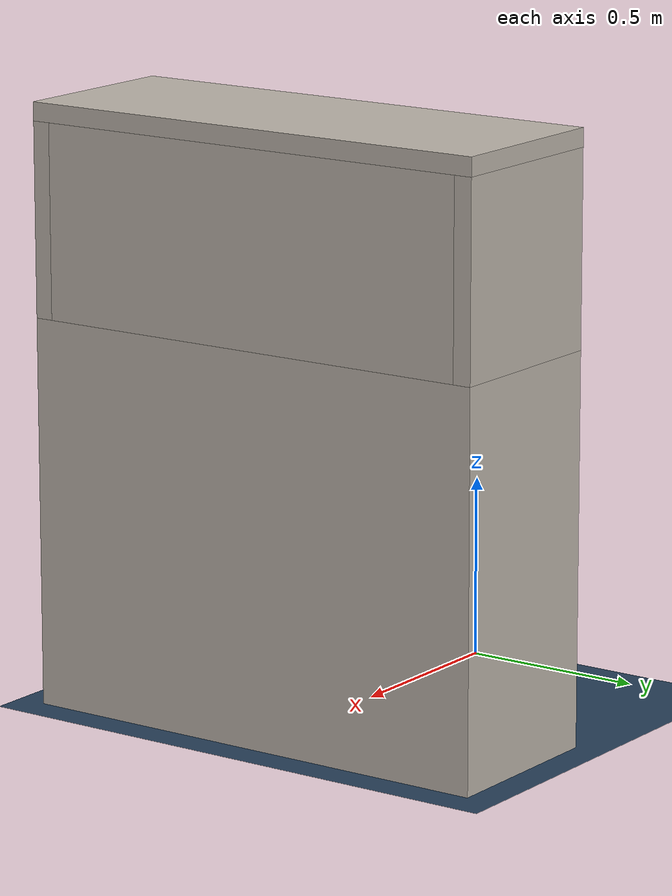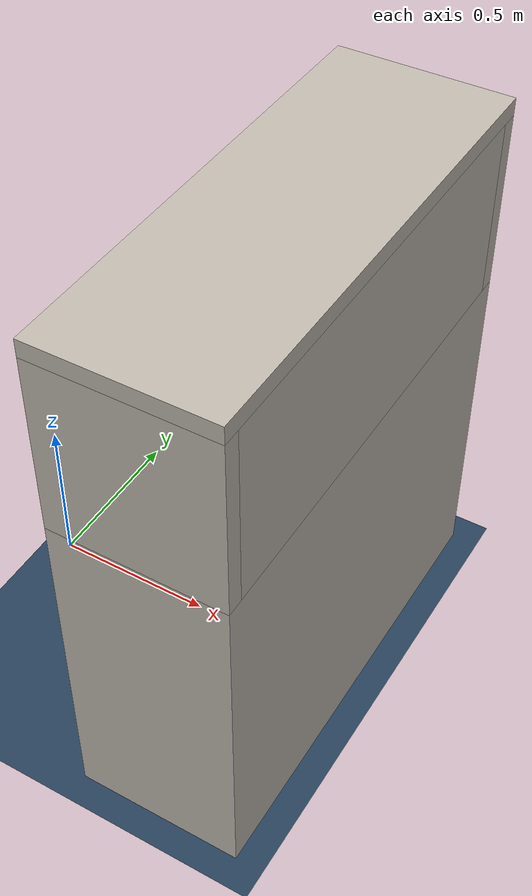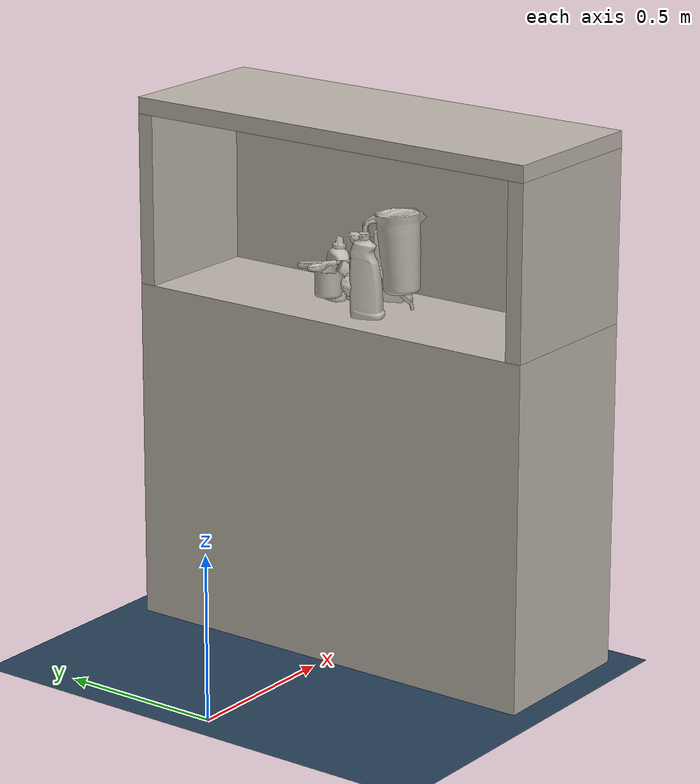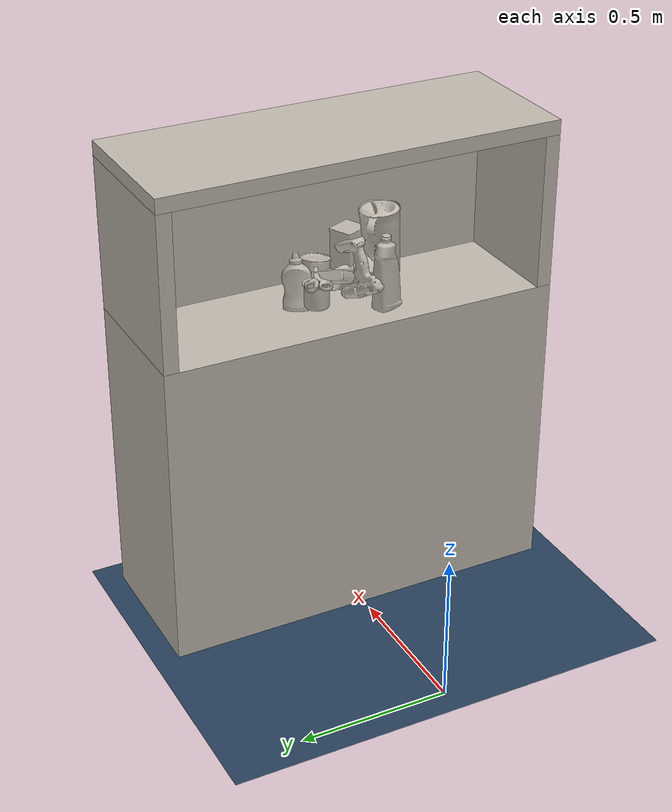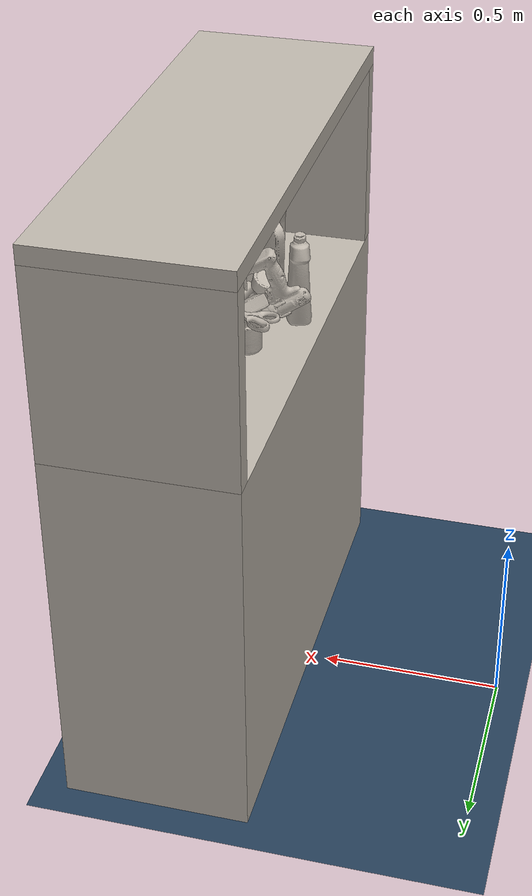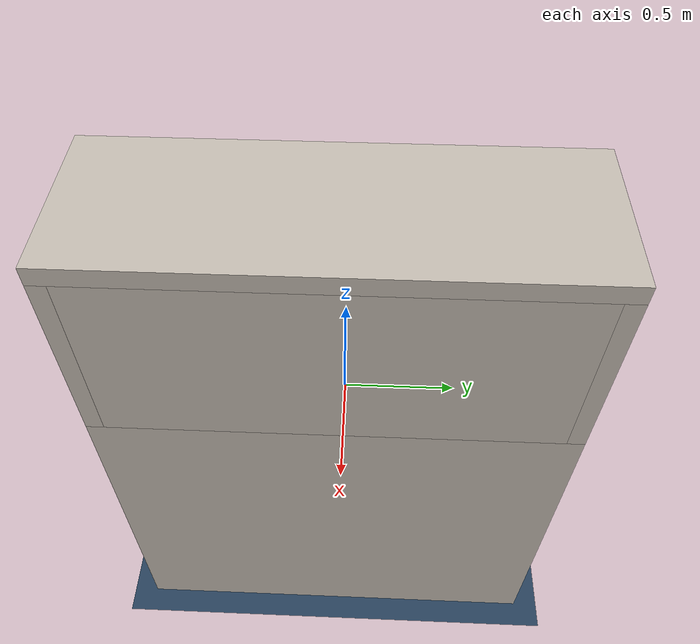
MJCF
<mujoco model="World">

  <compiler angle="radian" balanceinertia="true" inertiafromgeom="true" meshdir="/home/pracsys/GraspClutter6D_local" texturedir="/home/pracsys/GraspClutter6D_local" autolimits="true" />

  <option integrator="Euler" cone="elliptic" solver="CG" noslip_iterations="2">
    <flag warmstart="disable" multiccd="enable" />
  </option>

  <default>
    <geom density="10" />
  </default>

  <asset>

    <texture type="skybox" builtin="flat" rgb1="1 1 1" rgb2="0 0 0" width="512" height="512" />
    <texture name="grid" type="2d" builtin="checker" width="512" height="512" rgb1=".1 .2 .3" rgb2=".2 .3 .4" />
    <material name="grid" texture="grid" texrepeat="2 2" texuniform="true" specular="0" shininess="0" reflectance="0" emission="1" />

    <texture file="models/rs_table/ceramic.png" type="cube" name="tex-ceramic" />
    <material name="table_ceramic" reflectance="0.0" shininess="0.0" specular="0.2" texrepeat="1 1" texture="tex-ceramic" />
  <texture name="obj_000001_0_tex" type="2d" file="models_obj_m/obj_000001/obj_000001.png" /><material name="obj_000001_0_mat" texture="obj_000001_0_tex" specular="1.0" shininess="0.0" /><mesh name="obj_000001_0_vis" file="models_obj_m/obj_000001/obj_000001.obj" /><mesh name="obj_000001_0_obj_000001_collision_0" file="models_obj_m/obj_000001/obj_000001_collision_0.obj" /><mesh name="obj_000001_0_obj_000001_collision_1" file="models_obj_m/obj_000001/obj_000001_collision_1.obj" /><mesh name="obj_000001_0_obj_000001_collision_2" file="models_obj_m/obj_000001/obj_000001_collision_2.obj" /><mesh name="obj_000001_0_obj_000001_collision_3" file="models_obj_m/obj_000001/obj_000001_collision_3.obj" /><texture name="obj_000004_0_tex" type="2d" file="models_obj_m/obj_000004/obj_000004.png" /><material name="obj_000004_0_mat" texture="obj_000004_0_tex" specular="1.0" shininess="0.0" /><mesh name="obj_000004_0_vis" file="models_obj_m/obj_000004/obj_000004.obj" /><mesh name="obj_000004_0_obj_000004_collision_0" file="models_obj_m/obj_000004/obj_000004_collision_0.obj" /><mesh name="obj_000004_0_obj_000004_collision_1" file="models_obj_m/obj_000004/obj_000004_collision_1.obj" /><mesh name="obj_000004_0_obj_000004_collision_2" file="models_obj_m/obj_000004/obj_000004_collision_2.obj" /><mesh name="obj_000004_0_obj_000004_collision_3" file="models_obj_m/obj_000004/obj_000004_collision_3.obj" /><mesh name="obj_000004_0_obj_000004_collision_4" file="models_obj_m/obj_000004/obj_000004_collision_4.obj" /><mesh name="obj_000004_0_obj_000004_collision_5" file="models_obj_m/obj_000004/obj_000004_collision_5.obj" /><mesh name="obj_000004_0_obj_000004_collision_6" file="models_obj_m/obj_000004/obj_000004_collision_6.obj" /><mesh name="obj_000004_0_obj_000004_collision_7" file="models_obj_m/obj_000004/obj_000004_collision_7.obj" /><mesh name="obj_000004_0_obj_000004_collision_8" file="models_obj_m/obj_000004/obj_000004_collision_8.obj" /><mesh name="obj_000004_0_obj_000004_collision_9" file="models_obj_m/obj_000004/obj_000004_collision_9.obj" /><mesh name="obj_000004_0_obj_000004_collision_10" file="models_obj_m/obj_000004/obj_000004_collision_10.obj" /><mesh name="obj_000004_0_obj_000004_collision_11" file="models_obj_m/obj_000004/obj_000004_collision_11.obj" /><mesh name="obj_000004_0_obj_000004_collision_12" file="models_obj_m/obj_000004/obj_000004_collision_12.obj" /><mesh name="obj_000004_0_obj_000004_collision_13" file="models_obj_m/obj_000004/obj_000004_collision_13.obj" /><mesh name="obj_000004_0_obj_000004_collision_14" file="models_obj_m/obj_000004/obj_000004_collision_14.obj" /><mesh name="obj_000004_0_obj_000004_collision_15" file="models_obj_m/obj_000004/obj_000004_collision_15.obj" /><mesh name="obj_000004_0_obj_000004_collision_16" file="models_obj_m/obj_000004/obj_000004_collision_16.obj" /><mesh name="obj_000004_0_obj_000004_collision_17" file="models_obj_m/obj_000004/obj_000004_collision_17.obj" /><mesh name="obj_000004_0_obj_000004_collision_18" file="models_obj_m/obj_000004/obj_000004_collision_18.obj" /><mesh name="obj_000004_0_obj_000004_collision_19" file="models_obj_m/obj_000004/obj_000004_collision_19.obj" /><mesh name="obj_000004_0_obj_000004_collision_20" file="models_obj_m/obj_000004/obj_000004_collision_20.obj" /><mesh name="obj_000004_0_obj_000004_collision_21" file="models_obj_m/obj_000004/obj_000004_collision_21.obj" /><mesh name="obj_000004_0_obj_000004_collision_22" file="models_obj_m/obj_000004/obj_000004_collision_22.obj" /><texture name="obj_000005_0_tex" type="2d" file="models_obj_m/obj_000005/obj_000005.png" /><material name="obj_000005_0_mat" texture="obj_000005_0_tex" specular="1.0" shininess="0.0" /><mesh name="obj_000005_0_vis" file="models_obj_m/obj_000005/obj_000005.obj" /><mesh name="obj_000005_0_obj_000005_collision_0" file="models_obj_m/obj_000005/obj_000005_collision_0.obj" /><mesh name="obj_000005_0_obj_000005_collision_1" file="models_obj_m/obj_000005/obj_000005_collision_1.obj" /><mesh name="obj_000005_0_obj_000005_collision_2" file="models_obj_m/obj_000005/obj_000005_collision_2.obj" /><mesh name="obj_000005_0_obj_000005_collision_3" file="models_obj_m/obj_000005/obj_000005_collision_3.obj" /><texture name="obj_000006_0_tex" type="2d" file="models_obj_m/obj_000006/obj_000006.png" /><material name="obj_000006_0_mat" texture="obj_000006_0_tex" specular="1.0" shininess="0.0" /><mesh name="obj_000006_0_vis" file="models_obj_m/obj_000006/obj_000006.obj" /><mesh name="obj_000006_0_obj_000006_collision_0" file="models_obj_m/obj_000006/obj_000006_collision_0.obj" /><mesh name="obj_000006_0_obj_000006_collision_1" file="models_obj_m/obj_000006/obj_000006_collision_1.obj" /><mesh name="obj_000006_0_obj_000006_collision_2" file="models_obj_m/obj_000006/obj_000006_collision_2.obj" /><mesh name="obj_000006_0_obj_000006_collision_3" file="models_obj_m/obj_000006/obj_000006_collision_3.obj" /><mesh name="obj_000006_0_obj_000006_collision_4" file="models_obj_m/obj_000006/obj_000006_collision_4.obj" /><mesh name="obj_000006_0_obj_000006_collision_5" file="models_obj_m/obj_000006/obj_000006_collision_5.obj" /><mesh name="obj_000006_0_obj_000006_collision_6" file="models_obj_m/obj_000006/obj_000006_collision_6.obj" /><mesh name="obj_000006_0_obj_000006_collision_7" file="models_obj_m/obj_000006/obj_000006_collision_7.obj" /><mesh name="obj_000006_0_obj_000006_collision_8" file="models_obj_m/obj_000006/obj_000006_collision_8.obj" /><mesh name="obj_000006_0_obj_000006_collision_9" file="models_obj_m/obj_000006/obj_000006_collision_9.obj" /><mesh name="obj_000006_0_obj_000006_collision_10" file="models_obj_m/obj_000006/obj_000006_collision_10.obj" /><mesh name="obj_000006_0_obj_000006_collision_11" file="models_obj_m/obj_000006/obj_000006_collision_11.obj" /><mesh name="obj_000006_0_obj_000006_collision_12" file="models_obj_m/obj_000006/obj_000006_collision_12.obj" /><mesh name="obj_000006_0_obj_000006_collision_13" file="models_obj_m/obj_000006/obj_000006_collision_13.obj" /><texture name="obj_000007_0_tex" type="2d" file="models_obj_m/obj_000007/obj_000007.png" /><material name="obj_000007_0_mat" texture="obj_000007_0_tex" specular="1.0" shininess="0.0" /><mesh name="obj_000007_0_vis" file="models_obj_m/obj_000007/obj_000007.obj" /><mesh name="obj_000007_0_obj_000007_collision_0" file="models_obj_m/obj_000007/obj_000007_collision_0.obj" /><mesh name="obj_000007_0_obj_000007_collision_1" file="models_obj_m/obj_000007/obj_000007_collision_1.obj" /><mesh name="obj_000007_0_obj_000007_collision_2" file="models_obj_m/obj_000007/obj_000007_collision_2.obj" /><mesh name="obj_000007_0_obj_000007_collision_3" file="models_obj_m/obj_000007/obj_000007_collision_3.obj" /><mesh name="obj_000007_0_obj_000007_collision_4" file="models_obj_m/obj_000007/obj_000007_collision_4.obj" /><mesh name="obj_000007_0_obj_000007_collision_5" file="models_obj_m/obj_000007/obj_000007_collision_5.obj" /><mesh name="obj_000007_0_obj_000007_collision_6" file="models_obj_m/obj_000007/obj_000007_collision_6.obj" /><mesh name="obj_000007_0_obj_000007_collision_7" file="models_obj_m/obj_000007/obj_000007_collision_7.obj" /><mesh name="obj_000007_0_obj_000007_collision_8" file="models_obj_m/obj_000007/obj_000007_collision_8.obj" /><texture name="obj_000008_0_tex" type="2d" file="models_obj_m/obj_000008/obj_000008.png" /><material name="obj_000008_0_mat" texture="obj_000008_0_tex" specular="1.0" shininess="0.0" /><mesh name="obj_000008_0_vis" file="models_obj_m/obj_000008/obj_000008.obj" /><mesh name="obj_000008_0_obj_000008_collision_0" file="models_obj_m/obj_000008/obj_000008_collision_0.obj" /><mesh name="obj_000008_0_obj_000008_collision_1" file="models_obj_m/obj_000008/obj_000008_collision_1.obj" /><texture name="obj_000010_0_tex" type="2d" file="models_obj_m/obj_000010/obj_000011.png" /><material name="obj_000010_0_mat" texture="obj_000010_0_tex" specular="1.0" shininess="0.0" /><mesh name="obj_000010_0_vis" file="models_obj_m/obj_000010/obj_000010.obj" /><mesh name="obj_000010_0_obj_000010_collision_0" file="models_obj_m/obj_000010/obj_000010_collision_0.obj" /><mesh name="obj_000010_0_obj_000010_collision_1" file="models_obj_m/obj_000010/obj_000010_collision_1.obj" /><texture name="obj_000011_0_tex" type="2d" file="models_obj_m/obj_000011/obj_000011.png" /><material name="obj_000011_0_mat" texture="obj_000011_0_tex" specular="1.0" shininess="0.0" /><mesh name="obj_000011_0_vis" file="models_obj_m/obj_000011/obj_000011.obj" /><mesh name="obj_000011_0_obj_000011_collision_0" file="models_obj_m/obj_000011/obj_000011_collision_0.obj" /><mesh name="obj_000011_0_obj_000011_collision_1" file="models_obj_m/obj_000011/obj_000011_collision_1.obj" /><texture name="obj_000012_0_tex" type="2d" file="models_obj_m/obj_000012/obj_000013.png" /><material name="obj_000012_0_mat" texture="obj_000012_0_tex" specular="1.0" shininess="0.0" /><mesh name="obj_000012_0_vis" file="models_obj_m/obj_000012/obj_000012.obj" /><mesh name="obj_000012_0_obj_000012_collision_0" file="models_obj_m/obj_000012/obj_000012_collision_0.obj" /><mesh name="obj_000012_0_obj_000012_collision_1" file="models_obj_m/obj_000012/obj_000012_collision_1.obj" /><mesh name="obj_000012_0_obj_000012_collision_2" file="models_obj_m/obj_000012/obj_000012_collision_2.obj" /><texture name="obj_000014_0_tex" type="2d" file="models_obj_m/obj_000014/obj_000014.png" /><material name="obj_000014_0_mat" texture="obj_000014_0_tex" specular="1.0" shininess="0.0" /><mesh name="obj_000014_0_vis" file="models_obj_m/obj_000014/obj_000014.obj" /><mesh name="obj_000014_0_obj_000014_collision_0" file="models_obj_m/obj_000014/obj_000014_collision_0.obj" /><mesh name="obj_000014_0_obj_000014_collision_1" file="models_obj_m/obj_000014/obj_000014_collision_1.obj" /><mesh name="obj_000014_0_obj_000014_collision_2" file="models_obj_m/obj_000014/obj_000014_collision_2.obj" /><mesh name="obj_000014_0_obj_000014_collision_3" file="models_obj_m/obj_000014/obj_000014_collision_3.obj" /><mesh name="obj_000014_0_obj_000014_collision_4" file="models_obj_m/obj_000014/obj_000014_collision_4.obj" /><mesh name="obj_000014_0_obj_000014_collision_5" file="models_obj_m/obj_000014/obj_000014_collision_5.obj" /><mesh name="obj_000014_0_obj_000014_collision_6" file="models_obj_m/obj_000014/obj_000014_collision_6.obj" /><mesh name="obj_000014_0_obj_000014_collision_7" file="models_obj_m/obj_000014/obj_000014_collision_7.obj" /><mesh name="obj_000014_0_obj_000014_collision_8" file="models_obj_m/obj_000014/obj_000014_collision_8.obj" /><mesh name="obj_000014_0_obj_000014_collision_9" file="models_obj_m/obj_000014/obj_000014_collision_9.obj" /><mesh name="obj_000014_0_obj_000014_collision_10" file="models_obj_m/obj_000014/obj_000014_collision_10.obj" /><mesh name="obj_000014_0_obj_000014_collision_11" file="models_obj_m/obj_000014/obj_000014_collision_11.obj" /><mesh name="obj_000014_0_obj_000014_collision_12" file="models_obj_m/obj_000014/obj_000014_collision_12.obj" /><mesh name="obj_000014_0_obj_000014_collision_13" file="models_obj_m/obj_000014/obj_000014_collision_13.obj" /><mesh name="obj_000014_0_obj_000014_collision_14" file="models_obj_m/obj_000014/obj_000014_collision_14.obj" /><mesh name="obj_000014_0_obj_000014_collision_15" file="models_obj_m/obj_000014/obj_000014_collision_15.obj" /><mesh name="obj_000014_0_obj_000014_collision_16" file="models_obj_m/obj_000014/obj_000014_collision_16.obj" /><mesh name="obj_000014_0_obj_000014_collision_17" file="models_obj_m/obj_000014/obj_000014_collision_17.obj" /><mesh name="obj_000014_0_obj_000014_collision_18" file="models_obj_m/obj_000014/obj_000014_collision_18.obj" /><mesh name="obj_000014_0_obj_000014_collision_19" file="models_obj_m/obj_000014/obj_000014_collision_19.obj" /><mesh name="obj_000014_0_obj_000014_collision_20" file="models_obj_m/obj_000014/obj_000014_collision_20.obj" /><mesh name="obj_000014_0_obj_000014_collision_21" file="models_obj_m/obj_000014/obj_000014_collision_21.obj" /><mesh name="obj_000014_0_obj_000014_collision_22" file="models_obj_m/obj_000014/obj_000014_collision_22.obj" /><mesh name="obj_000014_0_obj_000014_collision_23" file="models_obj_m/obj_000014/obj_000014_collision_23.obj" /><mesh name="obj_000014_0_obj_000014_collision_24" file="models_obj_m/obj_000014/obj_000014_collision_24.obj" /><mesh name="obj_000014_0_obj_000014_collision_25" file="models_obj_m/obj_000014/obj_000014_collision_25.obj" /><mesh name="obj_000014_0_obj_000014_collision_26" file="models_obj_m/obj_000014/obj_000014_collision_26.obj" /><mesh name="obj_000014_0_obj_000014_collision_27" file="models_obj_m/obj_000014/obj_000014_collision_27.obj" /><mesh name="obj_000014_0_obj_000014_collision_28" file="models_obj_m/obj_000014/obj_000014_collision_28.obj" /><mesh name="obj_000014_0_obj_000014_collision_29" file="models_obj_m/obj_000014/obj_000014_collision_29.obj" /><mesh name="obj_000014_0_obj_000014_collision_30" file="models_obj_m/obj_000014/obj_000014_collision_30.obj" /><mesh name="obj_000014_0_obj_000014_collision_31" file="models_obj_m/obj_000014/obj_000014_collision_31.obj" /><mesh name="obj_000014_0_obj_000014_collision_32" file="models_obj_m/obj_000014/obj_000014_collision_32.obj" /><mesh name="obj_000014_0_obj_000014_collision_33" file="models_obj_m/obj_000014/obj_000014_collision_33.obj" /><mesh name="obj_000014_0_obj_000014_collision_34" file="models_obj_m/obj_000014/obj_000014_collision_34.obj" /><mesh name="obj_000014_0_obj_000014_collision_35" file="models_obj_m/obj_000014/obj_000014_collision_35.obj" /><mesh name="obj_000014_0_obj_000014_collision_36" file="models_obj_m/obj_000014/obj_000014_collision_36.obj" /><mesh name="obj_000014_0_obj_000014_collision_37" file="models_obj_m/obj_000014/obj_000014_collision_37.obj" /><mesh name="obj_000014_0_obj_000014_collision_38" file="models_obj_m/obj_000014/obj_000014_collision_38.obj" /><texture name="obj_000015_0_tex" type="2d" file="models_obj_m/obj_000015/obj_000015.png" /><material name="obj_000015_0_mat" texture="obj_000015_0_tex" specular="1.0" shininess="0.0" /><mesh name="obj_000015_0_vis" file="models_obj_m/obj_000015/obj_000015.obj" /><mesh name="obj_000015_0_obj_000015_collision_0" file="models_obj_m/obj_000015/obj_000015_collision_0.obj" /><mesh name="obj_000015_0_obj_000015_collision_1" file="models_obj_m/obj_000015/obj_000015_collision_1.obj" /><texture name="obj_000016_0_tex" type="2d" file="models_obj_m/obj_000016/obj_000016.png" /><material name="obj_000016_0_mat" texture="obj_000016_0_tex" specular="1.0" shininess="0.0" /><mesh name="obj_000016_0_vis" file="models_obj_m/obj_000016/obj_000016.obj" /><mesh name="obj_000016_0_obj_000016_collision_0" file="models_obj_m/obj_000016/obj_000016_collision_0.obj" /><mesh name="obj_000016_0_obj_000016_collision_1" file="models_obj_m/obj_000016/obj_000016_collision_1.obj" /><texture name="obj_000017_0_tex" type="2d" file="models_obj_m/obj_000017/obj_000018.png" /><material name="obj_000017_0_mat" texture="obj_000017_0_tex" specular="1.0" shininess="0.0" /><mesh name="obj_000017_0_vis" file="models_obj_m/obj_000017/obj_000017.obj" /><mesh name="obj_000017_0_obj_000017_collision_0" file="models_obj_m/obj_000017/obj_000017_collision_0.obj" /><mesh name="obj_000017_0_obj_000017_collision_1" file="models_obj_m/obj_000017/obj_000017_collision_1.obj" /><mesh name="obj_000017_0_obj_000017_collision_2" file="models_obj_m/obj_000017/obj_000017_collision_2.obj" /><mesh name="obj_000017_0_obj_000017_collision_3" file="models_obj_m/obj_000017/obj_000017_collision_3.obj" /><mesh name="obj_000017_0_obj_000017_collision_4" file="models_obj_m/obj_000017/obj_000017_collision_4.obj" /><mesh name="obj_000017_0_obj_000017_collision_5" file="models_obj_m/obj_000017/obj_000017_collision_5.obj" /><mesh name="obj_000017_0_obj_000017_collision_6" file="models_obj_m/obj_000017/obj_000017_collision_6.obj" /><mesh name="obj_000017_0_obj_000017_collision_7" file="models_obj_m/obj_000017/obj_000017_collision_7.obj" /><mesh name="obj_000017_0_obj_000017_collision_8" file="models_obj_m/obj_000017/obj_000017_collision_8.obj" /><mesh name="obj_000017_0_obj_000017_collision_9" file="models_obj_m/obj_000017/obj_000017_collision_9.obj" /><mesh name="obj_000017_0_obj_000017_collision_10" file="models_obj_m/obj_000017/obj_000017_collision_10.obj" /><mesh name="obj_000017_0_obj_000017_collision_11" file="models_obj_m/obj_000017/obj_000017_collision_11.obj" /><mesh name="obj_000017_0_obj_000017_collision_12" file="models_obj_m/obj_000017/obj_000017_collision_12.obj" /><mesh name="obj_000017_0_obj_000017_collision_13" file="models_obj_m/obj_000017/obj_000017_collision_13.obj" /><mesh name="obj_000017_0_obj_000017_collision_14" file="models_obj_m/obj_000017/obj_000017_collision_14.obj" /><mesh name="obj_000017_0_obj_000017_collision_15" file="models_obj_m/obj_000017/obj_000017_collision_15.obj" /><mesh name="obj_000017_0_obj_000017_collision_16" file="models_obj_m/obj_000017/obj_000017_collision_16.obj" /><mesh name="obj_000017_0_obj_000017_collision_17" file="models_obj_m/obj_000017/obj_000017_collision_17.obj" /><mesh name="obj_000017_0_obj_000017_collision_18" file="models_obj_m/obj_000017/obj_000017_collision_18.obj" /><mesh name="obj_000017_0_obj_000017_collision_19" file="models_obj_m/obj_000017/obj_000017_collision_19.obj" /><mesh name="obj_000017_0_obj_000017_collision_20" file="models_obj_m/obj_000017/obj_000017_collision_20.obj" /><mesh name="obj_000017_0_obj_000017_collision_21" file="models_obj_m/obj_000017/obj_000017_collision_21.obj" /><mesh name="obj_000017_0_obj_000017_collision_22" file="models_obj_m/obj_000017/obj_000017_collision_22.obj" /><mesh name="obj_000017_0_obj_000017_collision_23" file="models_obj_m/obj_000017/obj_000017_collision_23.obj" /><mesh name="obj_000017_0_obj_000017_collision_24" file="models_obj_m/obj_000017/obj_000017_collision_24.obj" /><mesh name="obj_000017_0_obj_000017_collision_25" file="models_obj_m/obj_000017/obj_000017_collision_25.obj" /><mesh name="obj_000017_0_obj_000017_collision_26" file="models_obj_m/obj_000017/obj_000017_collision_26.obj" /><mesh name="obj_000017_0_obj_000017_collision_27" file="models_obj_m/obj_000017/obj_000017_collision_27.obj" /></asset>

  <worldbody>
    <geom name="floor" size="2 2 0.05" type="plane" material="grid" condim="3" />
    <light directional="true" pos="-0.5 0.5 3" dir="0 0 -1" castshadow="false" diffuse="1 1 1" />
    <body name="workspace" pos="0.8 0 0">
      <geom name="shelf_bottom" size="0.25 0.68 0.525" pos="0 0 0.525" type="box" material="table_ceramic" />
      <geom name="shelf_top" size="0.25 0.68 0.025" pos="0 0 1.595" type="box" material="table_ceramic" />
      <geom name="shelf_padding_left" size="0.25 0.025 0.26" pos="0 -0.655 1.31" type="box" material="table_ceramic" />
      <geom name="shelf_padding_right" size="0.25 0.025 0.26" pos="0 0.655 1.31" type="box" material="table_ceramic" />
      <geom name="shelf_padding_back" size="0.05 0.63 0.26" pos="0.2 0 1.31" type="box" material="table_ceramic" />
    </body>
  <body name="obj_000001_0" pos="0.8200727456752468 0.04587298067996269 1.1159029911158158" quat="0.006132674227127622 0.6303514541096195 -0.7721102827390213 -0.08040613096885223"><joint name="obj_000001_0_joint" type="free" limited="false" actuatorfrclimited="false" /><geom name="obj_000001_0_geom" type="mesh" contype="0" conaffinity="0" group="1" mesh="obj_000001_0_vis" material="obj_000001_0_mat" /><geom type="mesh" contype="3" conaffinity="3" group="3" rgba="0.9088700260871841 0.5571276366315294 0.02905709149002622 1" mesh="obj_000001_0_obj_000001_collision_0" /><geom type="mesh" contype="3" conaffinity="3" group="3" rgba="0.6410593324381463 0.8402607000713928 0.7776918396385317 1" mesh="obj_000001_0_obj_000001_collision_1" /><geom type="mesh" contype="3" conaffinity="3" group="3" rgba="0.7741652165627951 0.3179101861807435 0.21643336209038533 1" mesh="obj_000001_0_obj_000001_collision_2" /><geom type="mesh" contype="3" conaffinity="3" group="3" rgba="0.8899250795032356 0.5115007140285017 0.5329157655053317 1" mesh="obj_000001_0_obj_000001_collision_3" /></body><body name="obj_000004_0" pos="0.7772426235087818 0.024683652515866628 1.1286223254050312" quat="0.5455081721445226 -0.4138782459699102 -0.4405025155138106 0.5805886370421125"><joint name="obj_000004_0_joint" type="free" limited="false" actuatorfrclimited="false" /><geom name="obj_000004_0_geom" type="mesh" contype="0" conaffinity="0" group="1" mesh="obj_000004_0_vis" material="obj_000004_0_mat" /><geom type="mesh" contype="3" conaffinity="3" group="3" rgba="0.9006364109388675 0.519839966144869 0.14706711888770962 1" mesh="obj_000004_0_obj_000004_collision_0" /><geom type="mesh" contype="3" conaffinity="3" group="3" rgba="0.5381862094377646 0.9079565306792778 0.5860391296454226 1" mesh="obj_000004_0_obj_000004_collision_1" /><geom type="mesh" contype="3" conaffinity="3" group="3" rgba="0.5480980169898275 0.08959733837327 0.9583058214694634 1" mesh="obj_000004_0_obj_000004_collision_2" /><geom type="mesh" contype="3" conaffinity="3" group="3" rgba="0.7348365413245799 0.9954340839881138 0.10043620261647124 1" mesh="obj_000004_0_obj_000004_collision_3" /><geom type="mesh" contype="3" conaffinity="3" group="3" rgba="0.15354151346682998 0.3992493537144245 0.9018485612644948 1" mesh="obj_000004_0_obj_000004_collision_4" /><geom type="mesh" contype="3" conaffinity="3" group="3" rgba="0.5002296823323479 0.06984196192688352 0.14791196849948396 1" mesh="obj_000004_0_obj_000004_collision_5" /><geom type="mesh" contype="3" conaffinity="3" group="3" rgba="0.8801698595600871 0.26981609947861984 0.5413749209604201 1" mesh="obj_000004_0_obj_000004_collision_6" /><geom type="mesh" contype="3" conaffinity="3" group="3" rgba="0.7455497002678284 0.842184542639177 0.5322202076862146 1" mesh="obj_000004_0_obj_000004_collision_7" /><geom type="mesh" contype="3" conaffinity="3" group="3" rgba="0.4442591382610347 0.03638499919506211 0.32497635780499234 1" mesh="obj_000004_0_obj_000004_collision_8" /><geom type="mesh" contype="3" conaffinity="3" group="3" rgba="0.347627915730894 0.06862688241171433 0.2798410387094733 1" mesh="obj_000004_0_obj_000004_collision_9" /><geom type="mesh" contype="3" conaffinity="3" group="3" rgba="0.37436058860529653 0.8129023073913533 0.26614439644261234 1" mesh="obj_000004_0_obj_000004_collision_10" /><geom type="mesh" contype="3" conaffinity="3" group="3" rgba="0.6651690258226822 0.3522546747219869 0.10346100033130279 1" mesh="obj_000004_0_obj_000004_collision_11" /><geom type="mesh" contype="3" conaffinity="3" group="3" rgba="0.37709868933847024 0.90775268626264 0.22612048573823684 1" mesh="obj_000004_0_obj_000004_collision_12" /><geom type="mesh" contype="3" conaffinity="3" group="3" rgba="0.40627473735328157 0.5372136836683266 0.09197578627779501 1" mesh="obj_000004_0_obj_000004_collision_13" /><geom type="mesh" contype="3" conaffinity="3" group="3" rgba="0.5166762315831523 0.5043939028531624 0.5872248864695762 1" mesh="obj_000004_0_obj_000004_collision_14" /><geom type="mesh" contype="3" conaffinity="3" group="3" rgba="0.9082988442703623 0.180499146533042 0.06796330417599283 1" mesh="obj_000004_0_obj_000004_collision_15" /><geom type="mesh" contype="3" conaffinity="3" group="3" rgba="0.3943402105248509 0.6197627239371787 0.4344456177319421 1" mesh="obj_000004_0_obj_000004_collision_16" /><geom type="mesh" contype="3" conaffinity="3" group="3" rgba="0.7831743542292524 0.42593724102287467 0.6857518540249657 1" mesh="obj_000004_0_obj_000004_collision_17" /><geom type="mesh" contype="3" conaffinity="3" group="3" rgba="0.16096816650240264 0.6010361248517645 0.059463136740677824 1" mesh="obj_000004_0_obj_000004_collision_18" /><geom type="mesh" contype="3" conaffinity="3" group="3" rgba="0.44263326221518995 0.2502881781833013 0.38014160116271456 1" mesh="obj_000004_0_obj_000004_collision_19" /><geom type="mesh" contype="3" conaffinity="3" group="3" rgba="0.5463028526085283 0.845330838869169 0.028012824828687388 1" mesh="obj_000004_0_obj_000004_collision_20" /><geom type="mesh" contype="3" conaffinity="3" group="3" rgba="0.19910255883632533 0.853207251405083 0.4267815842990055 1" mesh="obj_000004_0_obj_000004_collision_21" /><geom type="mesh" contype="3" conaffinity="3" group="3" rgba="0.013081679159259063 0.8478266493247634 0.5767717804295942 1" mesh="obj_000004_0_obj_000004_collision_22" /></body><body name="obj_000005_0" pos="0.7841225165709209 0.12540085650879013 1.136019917975469" quat="0.7314607595256353 0.05568694079950609 0.04163167382319477 0.6783295111030119"><joint name="obj_000005_0_joint" type="free" limited="false" actuatorfrclimited="false" /><geom name="obj_000005_0_geom" type="mesh" contype="0" conaffinity="0" group="1" mesh="obj_000005_0_vis" material="obj_000005_0_mat" /><geom type="mesh" contype="3" conaffinity="3" group="3" rgba="0.7022177830689367 0.5826341853352067 0.8165841864018348 1" mesh="obj_000005_0_obj_000005_collision_0" /><geom type="mesh" contype="3" conaffinity="3" group="3" rgba="0.8850110305129232 0.6858243586259702 0.23668113982222616 1" mesh="obj_000005_0_obj_000005_collision_1" /><geom type="mesh" contype="3" conaffinity="3" group="3" rgba="0.3521162735319521 0.8507480837221914 0.47569448758993216 1" mesh="obj_000005_0_obj_000005_collision_2" /><geom type="mesh" contype="3" conaffinity="3" group="3" rgba="0.9128805975392907 0.1623848974121762 0.6573614293432378 1" mesh="obj_000005_0_obj_000005_collision_3" /></body><body name="obj_000006_0" pos="0.6893925091994834 -0.07492159066116513 1.184225548508346" quat="0.1604136067751871 0.8579675139751776 0.48324009847019467 0.06810452962282149"><joint name="obj_000006_0_joint" type="free" limited="false" actuatorfrclimited="false" /><geom name="obj_000006_0_geom" type="mesh" contype="0" conaffinity="0" group="1" mesh="obj_000006_0_vis" material="obj_000006_0_mat" /><geom type="mesh" contype="3" conaffinity="3" group="3" rgba="0.2826735963389645 0.3732613789385052 0.7850961502526286 1" mesh="obj_000006_0_obj_000006_collision_0" /><geom type="mesh" contype="3" conaffinity="3" group="3" rgba="0.2778119464286495 0.852700815001951 0.9131251478975895 1" mesh="obj_000006_0_obj_000006_collision_1" /><geom type="mesh" contype="3" conaffinity="3" group="3" rgba="0.8020587813288036 0.3025792521954269 0.26202108232011456 1" mesh="obj_000006_0_obj_000006_collision_2" /><geom type="mesh" contype="3" conaffinity="3" group="3" rgba="0.8749284451958235 0.7193776905239141 0.13458988549502138 1" mesh="obj_000006_0_obj_000006_collision_3" /><geom type="mesh" contype="3" conaffinity="3" group="3" rgba="0.2130188599738736 0.6558868892940936 0.9509039115354172 1" mesh="obj_000006_0_obj_000006_collision_4" /><geom type="mesh" contype="3" conaffinity="3" group="3" rgba="0.7150440817211193 0.6337582813459244 0.5959789356841197 1" mesh="obj_000006_0_obj_000006_collision_5" /><geom type="mesh" contype="3" conaffinity="3" group="3" rgba="0.5914430060148156 0.6397733981720453 0.4770481905761884 1" mesh="obj_000006_0_obj_000006_collision_6" /><geom type="mesh" contype="3" conaffinity="3" group="3" rgba="0.5370695134833949 0.5650036394015392 0.4193565416983073 1" mesh="obj_000006_0_obj_000006_collision_7" /><geom type="mesh" contype="3" conaffinity="3" group="3" rgba="0.45822516380627654 0.5322962868917284 0.22216684784693663 1" mesh="obj_000006_0_obj_000006_collision_8" /><geom type="mesh" contype="3" conaffinity="3" group="3" rgba="0.006992755819853924 0.22617836990136309 0.6404316243166618 1" mesh="obj_000006_0_obj_000006_collision_9" /><geom type="mesh" contype="3" conaffinity="3" group="3" rgba="0.11371882398649225 0.6403057750389807 0.6565213489306491 1" mesh="obj_000006_0_obj_000006_collision_10" /><geom type="mesh" contype="3" conaffinity="3" group="3" rgba="0.5479453169554588 0.8715696065342489 0.8827485230284868 1" mesh="obj_000006_0_obj_000006_collision_11" /><geom type="mesh" contype="3" conaffinity="3" group="3" rgba="0.29639456023491106 0.716942263751537 0.6685544064500213 1" mesh="obj_000006_0_obj_000006_collision_12" /><geom type="mesh" contype="3" conaffinity="3" group="3" rgba="0.24060769408938665 0.11426077536513679 0.6643453630239089 1" mesh="obj_000006_0_obj_000006_collision_13" /></body><body name="obj_000007_0" pos="0.7267735514167029 0.025969252383913455 1.1543375363428088" quat="0.07052648871393596 -0.23427310422031902 0.1456038481690688 -0.9586144409651968"><joint name="obj_000007_0_joint" type="free" limited="false" actuatorfrclimited="false" /><geom name="obj_000007_0_geom" type="mesh" contype="0" conaffinity="0" group="1" mesh="obj_000007_0_vis" material="obj_000007_0_mat" /><geom type="mesh" contype="3" conaffinity="3" group="3" rgba="0.8352706854217573 0.9362994234831694 0.293846875833475 1" mesh="obj_000007_0_obj_000007_collision_0" /><geom type="mesh" contype="3" conaffinity="3" group="3" rgba="0.19905331661291714 0.4589533019713804 0.06900329109829795 1" mesh="obj_000007_0_obj_000007_collision_1" /><geom type="mesh" contype="3" conaffinity="3" group="3" rgba="0.09308414112438301 0.15050338013169284 0.9151604575537959 1" mesh="obj_000007_0_obj_000007_collision_2" /><geom type="mesh" contype="3" conaffinity="3" group="3" rgba="0.5321495441159548 0.7015834228771671 0.15224241133161276 1" mesh="obj_000007_0_obj_000007_collision_3" /><geom type="mesh" contype="3" conaffinity="3" group="3" rgba="0.23157390654164967 0.05668202494056429 0.16362068486781922 1" mesh="obj_000007_0_obj_000007_collision_4" /><geom type="mesh" contype="3" conaffinity="3" group="3" rgba="0.434682609159569 0.02891498183785912 0.4135716003922958 1" mesh="obj_000007_0_obj_000007_collision_5" /><geom type="mesh" contype="3" conaffinity="3" group="3" rgba="0.3986174188827881 0.6060589903191558 0.6080009673791554 1" mesh="obj_000007_0_obj_000007_collision_6" /><geom type="mesh" contype="3" conaffinity="3" group="3" rgba="0.19756852407433856 0.9438271125215391 0.3383181352472745 1" mesh="obj_000007_0_obj_000007_collision_7" /><geom type="mesh" contype="3" conaffinity="3" group="3" rgba="0.8336516710698538 0.1310754047491739 0.3201867808203366 1" mesh="obj_000007_0_obj_000007_collision_8" /></body><body name="obj_000008_0" pos="0.8390733183141449 0.03174384476164485 1.1256376665485375" quat="0.022100849859029294 0.9839864522122628 0.1735101713747912 0.03429919427222027"><joint name="obj_000008_0_joint" type="free" limited="false" actuatorfrclimited="false" /><geom name="obj_000008_0_geom" type="mesh" contype="0" conaffinity="0" group="1" mesh="obj_000008_0_vis" material="obj_000008_0_mat" /><geom type="mesh" contype="3" conaffinity="3" group="3" rgba="0.01671885427652786 0.8783564729505184 0.3287082962157769 1" mesh="obj_000008_0_obj_000008_collision_0" /><geom type="mesh" contype="3" conaffinity="3" group="3" rgba="0.2759906839891276 0.5799351894391934 0.46463070880456725 1" mesh="obj_000008_0_obj_000008_collision_1" /></body><body name="obj_000010_0" pos="0.7535572147023555 -0.07491995774795576 1.1204507428541721" quat="0.02006848226971715 -0.7427494447936431 -0.00889646755628215 0.6692095121433532"><joint name="obj_000010_0_joint" type="free" limited="false" actuatorfrclimited="false" /><geom name="obj_000010_0_geom" type="mesh" contype="0" conaffinity="0" group="1" mesh="obj_000010_0_vis" material="obj_000010_0_mat" /><geom type="mesh" contype="3" conaffinity="3" group="3" rgba="0.8732881017396182 0.3343353395712876 0.08871879557869766 1" mesh="obj_000010_0_obj_000010_collision_0" /><geom type="mesh" contype="3" conaffinity="3" group="3" rgba="0.7768969898522989 0.17302799154634285 0.5980561258489338 1" mesh="obj_000010_0_obj_000010_collision_1" /></body><body name="obj_000011_0" pos="0.7171451428348229 -0.1362832396948309 1.2482064718654229" quat="0.697841290339547 -0.023045000429067767 0.031237897304877582 0.7151997310013681"><joint name="obj_000011_0_joint" type="free" limited="false" actuatorfrclimited="false" /><geom name="obj_000011_0_geom" type="mesh" contype="0" conaffinity="0" group="1" mesh="obj_000011_0_vis" material="obj_000011_0_mat" /><geom type="mesh" contype="3" conaffinity="3" group="3" rgba="0.30507868086283874 0.9701993068122707 0.0021639835779936334 1" mesh="obj_000011_0_obj_000011_collision_0" /><geom type="mesh" contype="3" conaffinity="3" group="3" rgba="0.30046086308937203 0.33184924156596896 0.2382777103232726 1" mesh="obj_000011_0_obj_000011_collision_1" /></body><body name="obj_000012_0" pos="0.615060862706729 -0.10760383809148602 1.1960167403875734" quat="0.5644025632021549 -0.002766827940021964 -0.004150038864038086 0.8254846264415923"><joint name="obj_000012_0_joint" type="free" limited="false" actuatorfrclimited="false" /><geom name="obj_000012_0_geom" type="mesh" contype="0" conaffinity="0" group="1" mesh="obj_000012_0_vis" material="obj_000012_0_mat" /><geom type="mesh" contype="3" conaffinity="3" group="3" rgba="0.7554614099521485 0.6486382034608017 0.7176584907668884 1" mesh="obj_000012_0_obj_000012_collision_0" /><geom type="mesh" contype="3" conaffinity="3" group="3" rgba="0.7007292636586778 0.4517934483878622 0.09276525431541405 1" mesh="obj_000012_0_obj_000012_collision_1" /><geom type="mesh" contype="3" conaffinity="3" group="3" rgba="0.20665389244215027 0.9686490753588884 0.0818582005279912 1" mesh="obj_000012_0_obj_000012_collision_2" /></body><body name="obj_000014_0" pos="0.7089035308681984 0.08549304895036527 1.1193916968097208" quat="0.8833654125300502 2.9700862108205493e-05 0.009043604475597933 -0.4685976528767105"><joint name="obj_000014_0_joint" type="free" limited="false" actuatorfrclimited="false" /><geom name="obj_000014_0_geom" type="mesh" contype="0" conaffinity="0" group="1" mesh="obj_000014_0_vis" material="obj_000014_0_mat" /><geom type="mesh" contype="3" conaffinity="3" group="3" rgba="0.16141368952927726 0.8941132712421812 0.5548749728589505 1" mesh="obj_000014_0_obj_000014_collision_0" /><geom type="mesh" contype="3" conaffinity="3" group="3" rgba="0.8498791440201986 0.5078067392722992 0.18104551223069276 1" mesh="obj_000014_0_obj_000014_collision_1" /><geom type="mesh" contype="3" conaffinity="3" group="3" rgba="0.8943954905161718 0.3968195555274622 0.7506667206413482 1" mesh="obj_000014_0_obj_000014_collision_2" /><geom type="mesh" contype="3" conaffinity="3" group="3" rgba="0.35285466454019054 0.3172969522275877 0.7777097891043925 1" mesh="obj_000014_0_obj_000014_collision_3" /><geom type="mesh" contype="3" conaffinity="3" group="3" rgba="0.6717797492805505 0.27468490709077875 0.17325073818140246 1" mesh="obj_000014_0_obj_000014_collision_4" /><geom type="mesh" contype="3" conaffinity="3" group="3" rgba="0.7947496542642261 0.5505795486049172 0.24523806449691898 1" mesh="obj_000014_0_obj_000014_collision_5" /><geom type="mesh" contype="3" conaffinity="3" group="3" rgba="0.055183469003469154 0.8741690348288653 0.6355782986914638 1" mesh="obj_000014_0_obj_000014_collision_6" /><geom type="mesh" contype="3" conaffinity="3" group="3" rgba="0.13714783929055574 0.9099011487118126 0.046849323318082 1" mesh="obj_000014_0_obj_000014_collision_7" /><geom type="mesh" contype="3" conaffinity="3" group="3" rgba="0.5757321500485043 0.7653495890173662 0.11729263428082792 1" mesh="obj_000014_0_obj_000014_collision_8" /><geom type="mesh" contype="3" conaffinity="3" group="3" rgba="0.04262441774970249 0.20853658483044857 0.1703428205193146 1" mesh="obj_000014_0_obj_000014_collision_9" /><geom type="mesh" contype="3" conaffinity="3" group="3" rgba="0.7540479077019692 0.3915149318812796 0.4429325687742387 1" mesh="obj_000014_0_obj_000014_collision_10" /><geom type="mesh" contype="3" conaffinity="3" group="3" rgba="0.9209908675974051 0.10818362438838003 0.6189688407757469 1" mesh="obj_000014_0_obj_000014_collision_11" /><geom type="mesh" contype="3" conaffinity="3" group="3" rgba="0.8239539038983041 0.963565432161378 0.07680378701257484 1" mesh="obj_000014_0_obj_000014_collision_12" /><geom type="mesh" contype="3" conaffinity="3" group="3" rgba="0.3580527646207692 0.9396191389477992 0.6726680134980254 1" mesh="obj_000014_0_obj_000014_collision_13" /><geom type="mesh" contype="3" conaffinity="3" group="3" rgba="0.3187862019948787 0.842895426167915 0.30383779731684313 1" mesh="obj_000014_0_obj_000014_collision_14" /><geom type="mesh" contype="3" conaffinity="3" group="3" rgba="0.8290415048504837 0.43261520532805775 0.4960423319651849 1" mesh="obj_000014_0_obj_000014_collision_15" /><geom type="mesh" contype="3" conaffinity="3" group="3" rgba="0.47137951977516845 0.7080669244219827 0.5190940947326312 1" mesh="obj_000014_0_obj_000014_collision_16" /><geom type="mesh" contype="3" conaffinity="3" group="3" rgba="0.7270019138804638 0.08558543806348451 0.28134693023649016 1" mesh="obj_000014_0_obj_000014_collision_17" /><geom type="mesh" contype="3" conaffinity="3" group="3" rgba="0.2278750701799056 0.45829465031892036 0.24631126738678388 1" mesh="obj_000014_0_obj_000014_collision_18" /><geom type="mesh" contype="3" conaffinity="3" group="3" rgba="0.8345805016638979 0.20150630993040652 0.5303175522053208 1" mesh="obj_000014_0_obj_000014_collision_19" /><geom type="mesh" contype="3" conaffinity="3" group="3" rgba="0.21449831849224799 0.8815788784779822 0.4946040642073185 1" mesh="obj_000014_0_obj_000014_collision_20" /><geom type="mesh" contype="3" conaffinity="3" group="3" rgba="0.5201983270088316 0.07293896462298644 0.47589207267863676 1" mesh="obj_000014_0_obj_000014_collision_21" /><geom type="mesh" contype="3" conaffinity="3" group="3" rgba="0.6790069105260244 0.05281035932712075 0.8960063801553154 1" mesh="obj_000014_0_obj_000014_collision_22" /><geom type="mesh" contype="3" conaffinity="3" group="3" rgba="0.24152118753827823 0.6713577531353322 0.8759765939813601 1" mesh="obj_000014_0_obj_000014_collision_23" /><geom type="mesh" contype="3" conaffinity="3" group="3" rgba="0.8959852812192273 0.6685148885345674 0.043270461595834475 1" mesh="obj_000014_0_obj_000014_collision_24" /><geom type="mesh" contype="3" conaffinity="3" group="3" rgba="0.9103547626218504 0.037810082392731204 0.32968077117363426 1" mesh="obj_000014_0_obj_000014_collision_25" /><geom type="mesh" contype="3" conaffinity="3" group="3" rgba="0.8924690475590995 0.7858539504025231 0.5314529871560677 1" mesh="obj_000014_0_obj_000014_collision_26" /><geom type="mesh" contype="3" conaffinity="3" group="3" rgba="0.8776507752074951 0.006905611208717133 0.13662201660191675 1" mesh="obj_000014_0_obj_000014_collision_27" /><geom type="mesh" contype="3" conaffinity="3" group="3" rgba="0.8980953270074162 0.5018244752305326 0.015371112777743057 1" mesh="obj_000014_0_obj_000014_collision_28" /><geom type="mesh" contype="3" conaffinity="3" group="3" rgba="0.881652186049792 0.6680883818245129 0.8030035683379387 1" mesh="obj_000014_0_obj_000014_collision_29" /><geom type="mesh" contype="3" conaffinity="3" group="3" rgba="0.9161220339223549 0.8259454248436557 0.32114550413575527 1" mesh="obj_000014_0_obj_000014_collision_30" /><geom type="mesh" contype="3" conaffinity="3" group="3" rgba="0.6740594633112692 0.8978357800705399 0.7541896723125306 1" mesh="obj_000014_0_obj_000014_collision_31" /><geom type="mesh" contype="3" conaffinity="3" group="3" rgba="0.0727347622521074 0.5269632119735216 0.3031843793551897 1" mesh="obj_000014_0_obj_000014_collision_32" /><geom type="mesh" contype="3" conaffinity="3" group="3" rgba="0.42563563790720826 0.5797993794734493 0.5845484997962103 1" mesh="obj_000014_0_obj_000014_collision_33" /><geom type="mesh" contype="3" conaffinity="3" group="3" rgba="0.19592235314761497 0.4231444707325488 0.890859832481569 1" mesh="obj_000014_0_obj_000014_collision_34" /><geom type="mesh" contype="3" conaffinity="3" group="3" rgba="0.9949348150733605 0.608647559429353 0.15322985524005972 1" mesh="obj_000014_0_obj_000014_collision_35" /><geom type="mesh" contype="3" conaffinity="3" group="3" rgba="0.7858454240895385 0.323178255755149 0.9736177117477949 1" mesh="obj_000014_0_obj_000014_collision_36" /><geom type="mesh" contype="3" conaffinity="3" group="3" rgba="0.6648284999313376 0.9703306050755396 0.4425452240435842 1" mesh="obj_000014_0_obj_000014_collision_37" /><geom type="mesh" contype="3" conaffinity="3" group="3" rgba="0.8400435277741224 0.6937273949571666 0.6362434619528645 1" mesh="obj_000014_0_obj_000014_collision_38" /></body><body name="obj_000015_0" pos="0.6838535911161686 -0.0302080801870121 1.1900503423719058" quat="0.04368418399756684 0.28790062551777584 -0.6455531793425936 0.7060212564332671"><joint name="obj_000015_0_joint" type="free" limited="false" actuatorfrclimited="false" /><geom name="obj_000015_0_geom" type="mesh" contype="0" conaffinity="0" group="1" mesh="obj_000015_0_vis" material="obj_000015_0_mat" /><geom type="mesh" contype="3" conaffinity="3" group="3" rgba="0.3190316346741193 0.1952698898252364 0.8681956882216872 1" mesh="obj_000015_0_obj_000015_collision_0" /><geom type="mesh" contype="3" conaffinity="3" group="3" rgba="0.05496090459096381 0.16901046389765384 0.29761740439272677 1" mesh="obj_000015_0_obj_000015_collision_1" /></body><body name="obj_000016_0" pos="0.7940895491407997 -0.06542972475141096 1.179319308599749" quat="0.016143541112024214 0.7646833466972259 -0.6442039053683765 -0.0003060595141601015"><joint name="obj_000016_0_joint" type="free" limited="false" actuatorfrclimited="false" /><geom name="obj_000016_0_geom" type="mesh" contype="0" conaffinity="0" group="1" mesh="obj_000016_0_vis" material="obj_000016_0_mat" /><geom type="mesh" contype="3" conaffinity="3" group="3" rgba="0.26001420709121326 0.2392394811811206 0.8526178870500972 1" mesh="obj_000016_0_obj_000016_collision_0" /><geom type="mesh" contype="3" conaffinity="3" group="3" rgba="0.7022628207821711 0.8409075002048506 0.5809282073216406 1" mesh="obj_000016_0_obj_000016_collision_1" /></body><body name="obj_000017_0" pos="0.698421503169132 0.07872843672053653 1.176005468021623" quat="0.00417496048731221 -0.9086797738281591 -0.41727047587090876 0.01299955026146169"><joint name="obj_000017_0_joint" type="free" limited="false" actuatorfrclimited="false" /><geom name="obj_000017_0_geom" type="mesh" contype="0" conaffinity="0" group="1" mesh="obj_000017_0_vis" material="obj_000017_0_mat" /><geom type="mesh" contype="3" conaffinity="3" group="3" rgba="0.8300607436027256 0.7746450626520026 0.028259677595148802 1" mesh="obj_000017_0_obj_000017_collision_0" /><geom type="mesh" contype="3" conaffinity="3" group="3" rgba="0.8722382693318378 0.7274771061770118 0.3531693377771803 1" mesh="obj_000017_0_obj_000017_collision_1" /><geom type="mesh" contype="3" conaffinity="3" group="3" rgba="0.5980877609329729 0.08964925108942157 0.9827409328247976 1" mesh="obj_000017_0_obj_000017_collision_2" /><geom type="mesh" contype="3" conaffinity="3" group="3" rgba="0.12896852327670105 0.23262496541784183 0.708307388236716 1" mesh="obj_000017_0_obj_000017_collision_3" /><geom type="mesh" contype="3" conaffinity="3" group="3" rgba="0.49139690091838406 0.8926335265499304 0.5725586181467778 1" mesh="obj_000017_0_obj_000017_collision_4" /><geom type="mesh" contype="3" conaffinity="3" group="3" rgba="0.7937783832204612 0.42217433502668733 0.08859246894572148 1" mesh="obj_000017_0_obj_000017_collision_5" /><geom type="mesh" contype="3" conaffinity="3" group="3" rgba="0.31968501261458615 0.055692886468857505 0.13372686667046396 1" mesh="obj_000017_0_obj_000017_collision_6" /><geom type="mesh" contype="3" conaffinity="3" group="3" rgba="0.13222025522357372 0.17526274312101753 0.06896550916264677 1" mesh="obj_000017_0_obj_000017_collision_7" /><geom type="mesh" contype="3" conaffinity="3" group="3" rgba="0.619764861047721 0.6525147311748656 0.1945147804146634 1" mesh="obj_000017_0_obj_000017_collision_8" /><geom type="mesh" contype="3" conaffinity="3" group="3" rgba="0.7542938162430041 0.5932445765901436 0.7103646795954568 1" mesh="obj_000017_0_obj_000017_collision_9" /><geom type="mesh" contype="3" conaffinity="3" group="3" rgba="0.2524389464191312 0.4250197643184034 0.5484201401942239 1" mesh="obj_000017_0_obj_000017_collision_10" /><geom type="mesh" contype="3" conaffinity="3" group="3" rgba="0.12747630615148275 0.8773457669467531 0.2903516195529615 1" mesh="obj_000017_0_obj_000017_collision_11" /><geom type="mesh" contype="3" conaffinity="3" group="3" rgba="0.36705284536176563 0.43857882856348707 0.1921920616144135 1" mesh="obj_000017_0_obj_000017_collision_12" /><geom type="mesh" contype="3" conaffinity="3" group="3" rgba="0.020558595977965055 0.21526825750714773 0.772725517547242 1" mesh="obj_000017_0_obj_000017_collision_13" /><geom type="mesh" contype="3" conaffinity="3" group="3" rgba="0.10547210479742064 0.9890552387987501 0.2674120461420154 1" mesh="obj_000017_0_obj_000017_collision_14" /><geom type="mesh" contype="3" conaffinity="3" group="3" rgba="0.5360270978662599 0.047077211229519134 0.4732059459915734 1" mesh="obj_000017_0_obj_000017_collision_15" /><geom type="mesh" contype="3" conaffinity="3" group="3" rgba="0.32224738434780165 0.15368027561517583 0.33294464645257393 1" mesh="obj_000017_0_obj_000017_collision_16" /><geom type="mesh" contype="3" conaffinity="3" group="3" rgba="0.062153350878422775 0.15503522074777376 0.031107839074490995 1" mesh="obj_000017_0_obj_000017_collision_17" /><geom type="mesh" contype="3" conaffinity="3" group="3" rgba="0.8894341143153127 0.9274654291220618 0.8960713779272304 1" mesh="obj_000017_0_obj_000017_collision_18" /><geom type="mesh" contype="3" conaffinity="3" group="3" rgba="0.6407302652172892 0.7024854384405839 0.8132487939275371 1" mesh="obj_000017_0_obj_000017_collision_19" /><geom type="mesh" contype="3" conaffinity="3" group="3" rgba="0.4219128475173737 0.12864992232644612 0.6362594297911104 1" mesh="obj_000017_0_obj_000017_collision_20" /><geom type="mesh" contype="3" conaffinity="3" group="3" rgba="0.6553489886066428 0.7743604048132783 0.24056368137361295 1" mesh="obj_000017_0_obj_000017_collision_21" /><geom type="mesh" contype="3" conaffinity="3" group="3" rgba="0.0020229106216186343 0.307330070733969 0.17780994515928916 1" mesh="obj_000017_0_obj_000017_collision_22" /><geom type="mesh" contype="3" conaffinity="3" group="3" rgba="0.6179802568288576 0.3727782053738845 0.7596080060713355 1" mesh="obj_000017_0_obj_000017_collision_23" /><geom type="mesh" contype="3" conaffinity="3" group="3" rgba="0.2543795317816884 0.44576637101255845 0.39514403782482055 1" mesh="obj_000017_0_obj_000017_collision_24" /><geom type="mesh" contype="3" conaffinity="3" group="3" rgba="0.1432102771351177 0.4024857781955712 0.7572092015391542 1" mesh="obj_000017_0_obj_000017_collision_25" /><geom type="mesh" contype="3" conaffinity="3" group="3" rgba="0.5090090981373664 0.38439090770599904 0.5322095653024554 1" mesh="obj_000017_0_obj_000017_collision_26" /><geom type="mesh" contype="3" conaffinity="3" group="3" rgba="0.40226807840950896 0.5364817416307209 0.6608784606481888 1" mesh="obj_000017_0_obj_000017_collision_27" /></body></worldbody>

<size memory="64M" /></mujoco>
